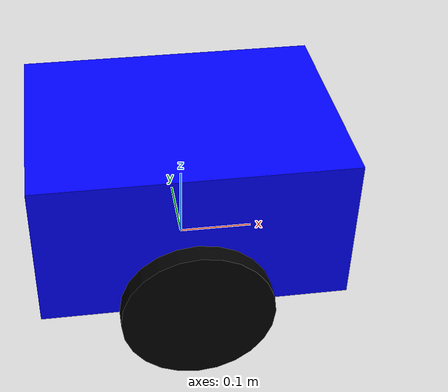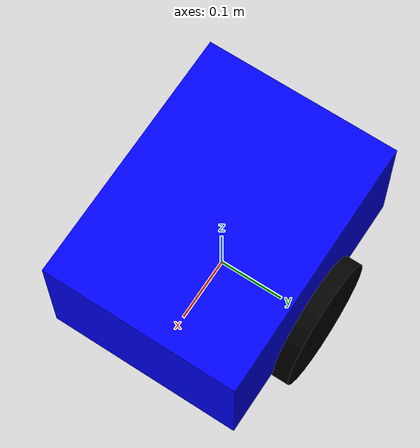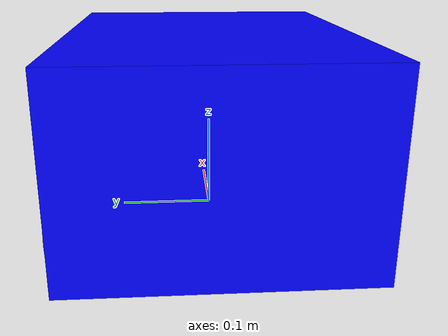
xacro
<?xml version="1.0"?>
<!-- Basic differential drive mobile base -->
<robot xmlns:xacro="http://www.ros.org/wiki/xacro" name="diffdrive_robot">
  <xacro:arg name="prefix" default="" />
  <xacro:arg name="use_mock_hardware" default="false" />

  <!-- Import diffbot ros2_control description -->
  <xacro:include filename="../ros2_control/diffbot_ros2_control.xacro" />

  <!-- Robot physical description -->
  <xacro:macro name="diffbot" params="prefix">
    <link name="${prefix}base_link">
      <visual>
        <origin xyz="0 0 0.1" rpy="0 0 0"/>
        <geometry>
          <box size="0.4 0.3 0.2"/>
        </geometry>
        <material name="blue">
          <color rgba="0 0 1 1"/>
        </material>
      </visual>
      <collision>
        <origin xyz="0 0 0.1" rpy="0 0 0"/>
        <geometry>
          <box size="0.4 0.3 0.2"/>
        </geometry>
      </collision>
      <inertial>
        <origin xyz="0 0 0.1" rpy="0 0 0"/>
        <mass value="5.0"/>
        <inertia ixx="0.08" ixy="0.0" ixz="0.0" iyy="0.13" iyz="0.0" izz="0.2"/>
      </inertial>
    </link>

    <!-- Left wheel -->
    <link name="${prefix}left_wheel">
      <visual>
        <origin xyz="0 0 0" rpy="1.5708 0 0"/>
        <geometry>
          <cylinder radius="0.1" length="0.05"/>
        </geometry>
        <material name="black">
          <color rgba="0 0 0 1"/>
        </material>
      </visual>
      <collision>
        <origin xyz="0 0 0" rpy="1.5708 0 0"/>
        <geometry>
          <cylinder radius="0.1" length="0.05"/>
        </geometry>
      </collision>
      <inertial>
        <origin xyz="0 0 0" rpy="1.5708 0 0"/>
        <mass value="1.0"/>
        <inertia ixx="0.01" ixy="0.0" ixz="0.0" iyy="0.01" iyz="0.0" izz="0.01"/>
      </inertial>
    </link>

    <!-- Right wheel -->
    <link name="${prefix}right_wheel">
      <visual>
        <origin xyz="0 0 0" rpy="1.5708 0 0"/>
        <geometry>
          <cylinder radius="0.1" length="0.05"/>
        </geometry>
        <material name="black">
          <color rgba="0 0 0 1"/>
        </material>
      </visual>
      <collision>
        <origin xyz="0 0 0" rpy="1.5708 0 0"/>
        <geometry>
          <cylinder radius="0.1" length="0.05"/>
        </geometry>
      </collision>
      <inertial>
        <origin xyz="0 0 0" rpy="1.5708 0 0"/>
        <mass value="1.0"/>
        <inertia ixx="0.01" ixy="0.0" ixz="0.0" iyy="0.01" iyz="0.0" izz="0.01"/>
      </inertial>
    </link>

    <!-- Left wheel joint -->
    <joint name="${prefix}left_wheel_joint" type="continuous">
      <origin xyz="0 0.15 0" rpy="0 0 0"/>
      <parent link="${prefix}base_link"/>
      <child link="${prefix}left_wheel"/>
      <axis xyz="0 1 0"/>
    </joint>

    <!-- Right wheel joint -->
    <joint name="${prefix}right_wheel_joint" type="continuous">
      <origin xyz="0 -0.15 0" rpy="0 0 0"/>
      <parent link="${prefix}base_link"/>
      <child link="${prefix}right_wheel"/>
      <axis xyz="0 1 0"/>
    </joint>
  </xacro:macro>

  <xacro:diffbot prefix="$(arg prefix)" />

  <xacro:diffbot_ros2_control
    name="DiffBot" prefix="$(arg prefix)" use_mock_hardware="$(arg use_mock_hardware)"/>

</robot>
